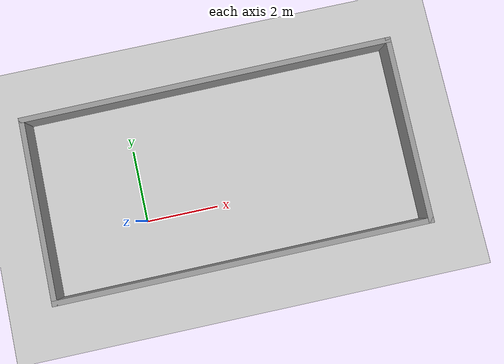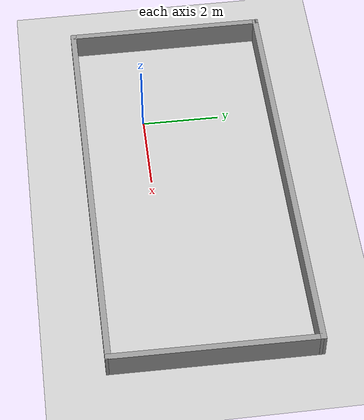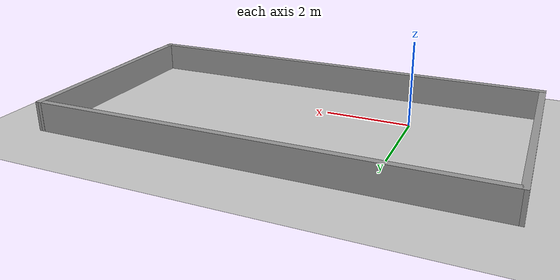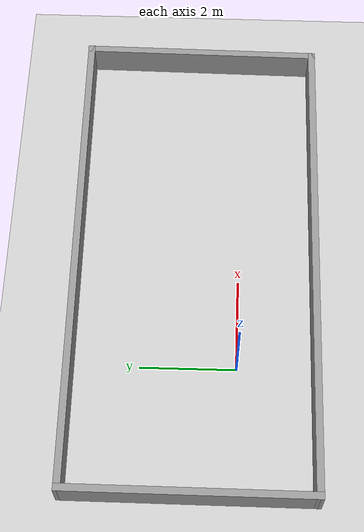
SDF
<sdf version="1.7">
 <world name="default">
  <light name="sun" type="directional">
   <pose>0 0 10 0 -0 0</pose>
   <diffuse>0.8 0.8 0.8 1</diffuse>
   <specular>0.2 0.2 0.2 1</specular>
   <attenuation>
    <range>1000</range>
    <constant>0.9</constant>
    <linear>0.01</linear>
    <quadratic>0.001</quadratic>
   </attenuation>
   <direction>-0.5 0.1 -0.9</direction>
   <spot><inner_angle>0</inner_angle><outer_angle>0</outer_angle><falloff>0</falloff></spot>
  </light>
  <model name="ground_plane">
   <static>1</static>
   <link name="link">
    <collision name="collision">
     <geometry><plane><normal>0 0 1</normal><size>100 100</size></plane></geometry>
     <surface>
      <contact><collide_bitmask>65535</collide_bitmask></contact>
      <friction><ode><mu>100</mu><mu2>50</mu2></ode></friction>
     </surface>
    </collision>
    <visual name="visual">
     <cast_shadows>0</cast_shadows>
     <geometry><plane><normal>0 0 1</normal><size>100 100</size></plane></geometry>
     <material>
      <script><uri>file://media/materials/scripts/gazebo.material</uri><name>Gazebo/Grey</name></script>
     </material>
    </visual>
   </link>
  </model>
  <gravity>0 0 -9.8</gravity>
  <magnetic_field>6e-06 2.3e-05 -4.2e-05</magnetic_field>
  <atmosphere type="adiabatic"/>
  <physics type="ode">
   <max_step_size>0.001</max_step_size>
   <real_time_factor>1</real_time_factor>
   <real_time_update_rate>1000</real_time_update_rate>
  </physics>
  <scene><ambient>0.4 0.4 0.4 1</ambient><background>0.7 0.7 0.7 1</background><shadows>1</shadows></scene>
  <audio><device>default</device></audio>
  <spherical_coordinates>
   <surface_model>EARTH_WGS84</surface_model>
   <latitude_deg>0</latitude_deg>
   <longitude_deg>0</longitude_deg>
   <elevation>0</elevation>
   <heading_deg>0</heading_deg>
  </spherical_coordinates>
  <model name="wall_following_world">
   <pose>2.42835 0.93084 0 0 -0 0</pose>
   <link name="Wall_10">
    <collision name="Wall_10_Collision">
     <geometry><box><size>10.5013 0.15 0.7</size></box></geometry>
     <pose>0 0 0.35 0 -0 0</pose>
    </collision>
    <visual name="Wall_10_Visual">
     <pose>0 0 0.35 0 -0 0</pose>
     <geometry><box><size>10.5013 0.15 0.7</size></box></geometry>
     <material>
      <script><uri>file://media/materials/scripts/gazebo.material</uri><name>Gazebo/Grey</name></script>
      <ambient>1 1 1 1</ambient>
     </material>
     <meta><layer>0</layer></meta>
    </visual>
    <pose>0.005149 2.51816 0 0 -0 -3.13483</pose>
   </link>
   <link name="Wall_11">
    <collision name="Wall_11_Collision">
     <geometry><box><size>5.18728 0.15 0.7</size></box></geometry>
     <pose>0 0 0.35 0 -0 0</pose>
    </collision>
    <visual name="Wall_11_Visual">
     <pose>0 0 0.35 0 -0 0</pose>
     <geometry><box><size>5.18728 0.15 0.7</size></box></geometry>
     <material>
      <script><uri>file://media/materials/scripts/gazebo.material</uri><name>Gazebo/Grey</name></script>
      <ambient>1 1 1 1</ambient>
     </material>
     <meta><layer>0</layer></meta>
    </visual>
    <pose>-5.17585 -0.03534 0 0 -0 -1.57298</pose>
   </link>
   <link name="Wall_8">
    <collision name="Wall_8_Collision">
     <geometry><box><size>10.453 0.15 0.7</size></box></geometry>
     <pose>0 0 0.35 0 -0 0</pose>
    </collision>
    <visual name="Wall_8_Visual">
     <pose>0 0 0.35 0 -0 0</pose>
     <geometry><box><size>10.453 0.15 0.7</size></box></geometry>
     <material>
      <script><uri>file://media/materials/scripts/gazebo.material</uri><name>Gazebo/Grey</name></script>
      <ambient>1 1 1 1</ambient>
     </material>
     <meta><layer>0</layer></meta>
    </visual>
    <pose>-0.029851 -2.54284 0 0 -0 0.002135</pose>
   </link>
   <link name="Wall_9">
    <collision name="Wall_9_Collision">
     <geometry><box><size>5.23557 0.15 0.7</size></box></geometry>
     <pose>0 0 0.35 0 -0 0</pose>
    </collision>
    <visual name="Wall_9_Visual">
     <pose>0 0 0.35 0 -0 0</pose>
     <geometry><box><size>5.23557 0.15 0.7</size></box></geometry>
     <material>
      <script><uri>file://media/materials/scripts/gazebo.material</uri><name>Gazebo/Grey</name></script>
      <ambient>1 1 1 1</ambient>
     </material>
     <meta><layer>0</layer></meta>
    </visual>
    <pose>5.15115 0.01066 0 0 -0 1.55919</pose>
   </link>
   <static>1</static>
  </model>
 </world>
</sdf>
